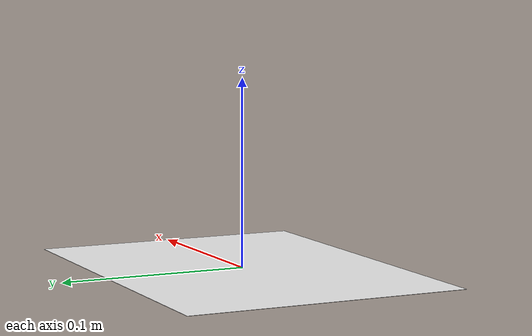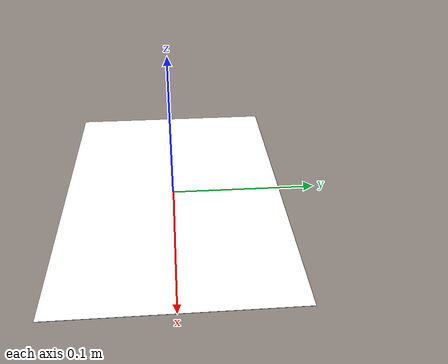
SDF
<?xml version="1.0"?>
<sdf version="1.9">
    <model name="checker_default">
        <static>true</static>
        <link name="checker_link">
            <visual name="checker_visual">
                <geometry>
                    <plane>
                        <normal>0 0 1</normal>
                        <size>0.200 0.15</size>
                    </plane>
                </geometry>
                <material>
                    <diffuse>1 1 1 1</diffuse>
                    <specular>0.4 0.4 0.4 1</specular>
                    <pbr>
                        <metal>
                            <albedo_map>materials/textures/pattern.png</albedo_map>
                        </metal>
                    </pbr>
                </material>
            </visual>
        </link>
    </model>
</sdf>
